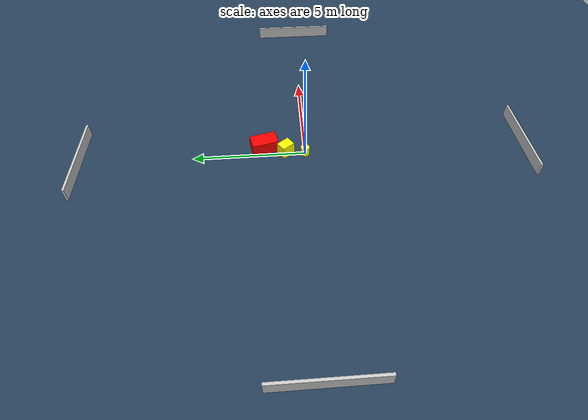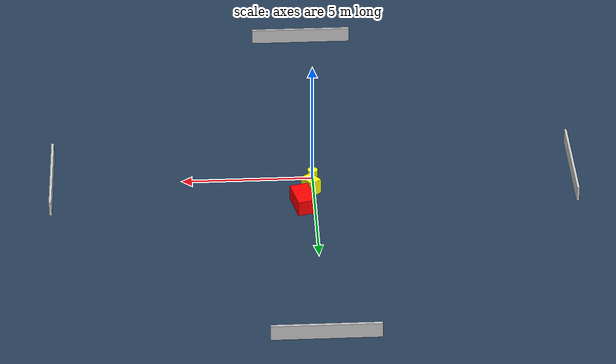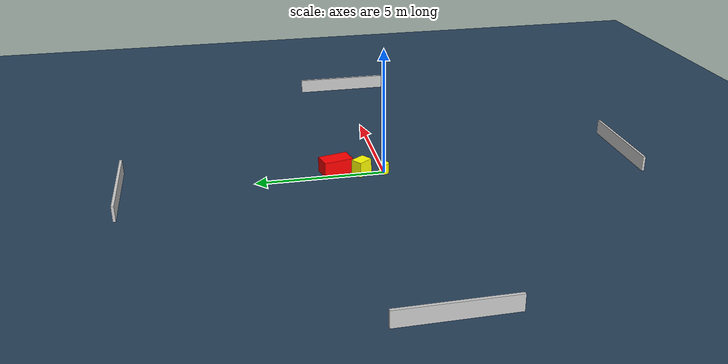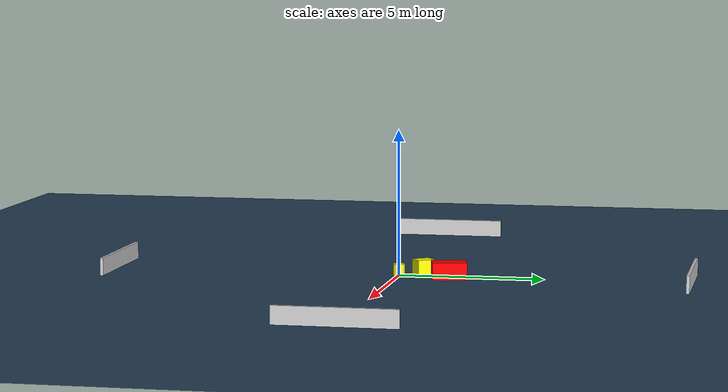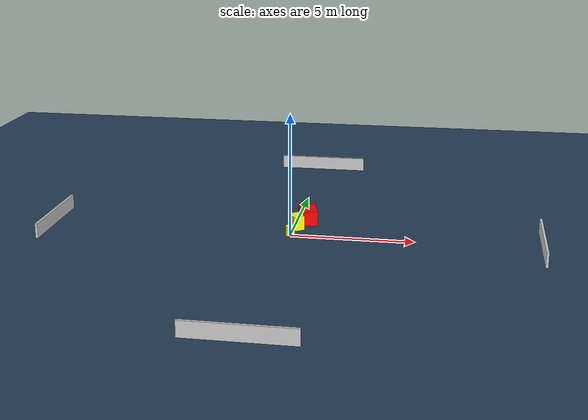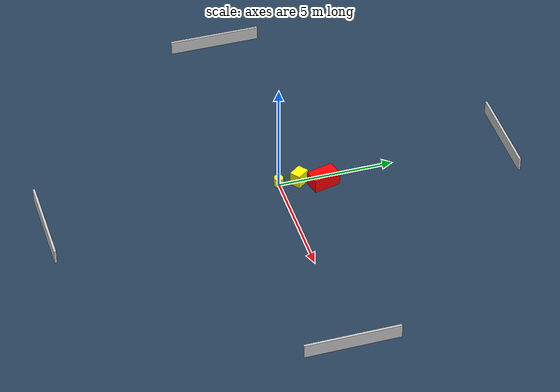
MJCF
<?xml version="1.0" ?>
<mujoco model="generated_environment">
  <option timestep="0.01" integrator="RK4" cone="elliptic"/>
  <default>
    <geom density="1"/>
  </default>
  <asset>
    <texture builtin="gradient" height="3072" name="skybox" rgb1="0.3 0.5 0.7" rgb2="0 0 0" type="skybox" width="512"/>
    <texture builtin="checker" height="300" name="groundplane" rgb1="0.2 0.3 0.4" rgb2="0.1 0.2 0.3" type="2d" width="300"/>
    <material name="groundplane" reflectance="0.2" texrepeat="5 5" texture="groundplane"/>
  </asset>
  <worldbody>
    <light dir="0 0 -1" directional="true" pos="0 0 1.5"/>
    <geom condim="3" friction="0.5 0.005 0.001" material="groundplane" name="floor" pos="0 0 0" size="0 0 0.05" type="plane"/>
    <body name="walls">
      <geom name="wall_1" condim="4" pos="-10.0 0.0 0.3" rgba="0.800000011920929 0.800000011920929 0.800000011920929 1.0" size="0.05 2.0 0.3" type="box"/>
      <geom name="wall_2" condim="4" pos="10.0 0.0 0.3" rgba="0.800000011920929 0.800000011920929 0.800000011920929 1.0" size="0.05 2.0 0.3" type="box"/>
      <geom name="wall_3" condim="4" pos="0.0 -10.0 0.3" rgba="0.800000011920929 0.800000011920929 0.800000011920929 1.0" size="2.0 0.05 0.3" type="box"/>
      <geom name="wall_4" condim="4" pos="0.0 10.0 0.3" rgba="0.800000011920929 0.800000011920929 0.800000011920929 1.0" size="2.0 0.05 0.3" type="box"/>
    </body>
    <body name="robot">
      <joint name="joint_x" type="slide" pos="0 0 0" axis="1 0 0"/>
      <joint name="joint_y" type="slide" pos="0 0 0" axis="0 1 0"/>
      <geom name="robot" type="cylinder" pos="0.0 0.0 0.2" size="0.2 0.2 0.0" mass="5.0" friction="1.0 0.005 0.0001" condim="4" rgba="1.0 1.0 0.0 1.0"/>
    </body>
    <body name="obstacle_1_movable">
      <geom name="obstacle_1_movable" condim="4" pos="0.09679832856753569 0.8666711444867102 0.3" euler="0 0 126.44519053752047" friction="0.0 0.005 0.001" rgba="1.0 1.0 0.0 1.0" size="0.30641138308010046 0.23905063667218002 0.3" type="box" mass="0.1"/>
      <joint type="free"/>
    </body>
    <body name="obstacle_2_static">
      <geom name="obstacle_2_static" condim="4" pos="0.4513910122591892 1.8238665024354088 0.3" euler="0 0 193.65968812541092" friction="0.0 0.005 0.001" rgba="1.0 0.0 0.0 1.0" size="0.35479275539528804 0.5898754097678696 0.3" type="box"/>
    </body>
  </worldbody>
  <actuator>
    <motor name="actuator_x" joint="joint_x" gear="1" ctrlrange="-1 1"/>
    <motor name="actuator_y" joint="joint_y" gear="1" ctrlrange="-1 1"/>
  </actuator>
</mujoco>
